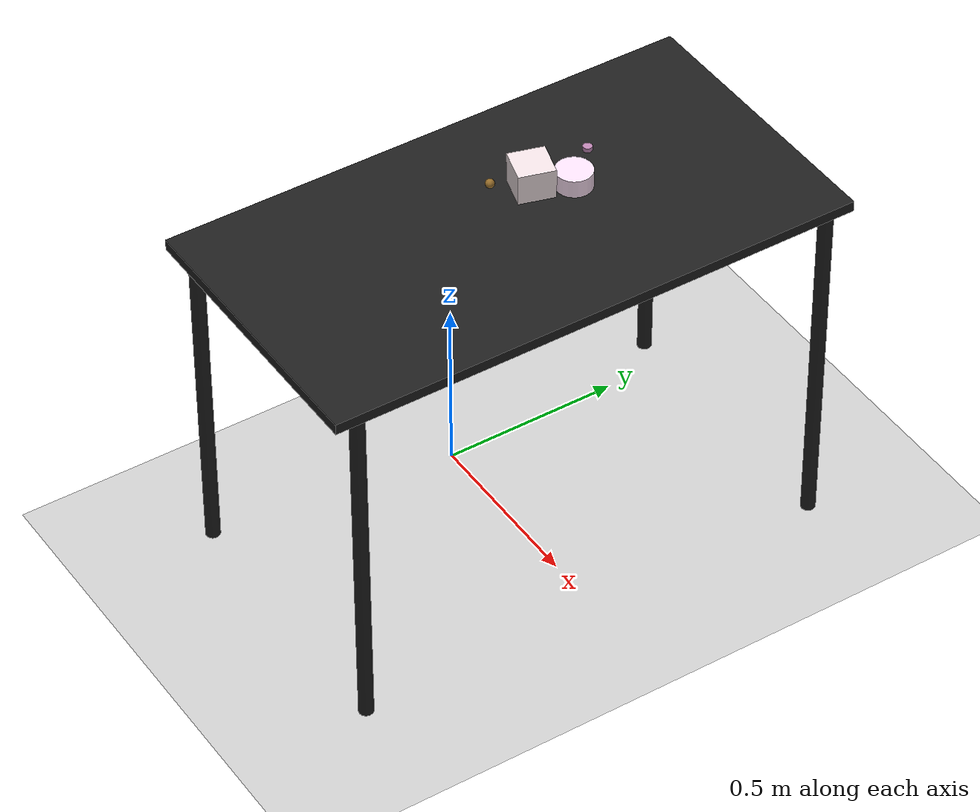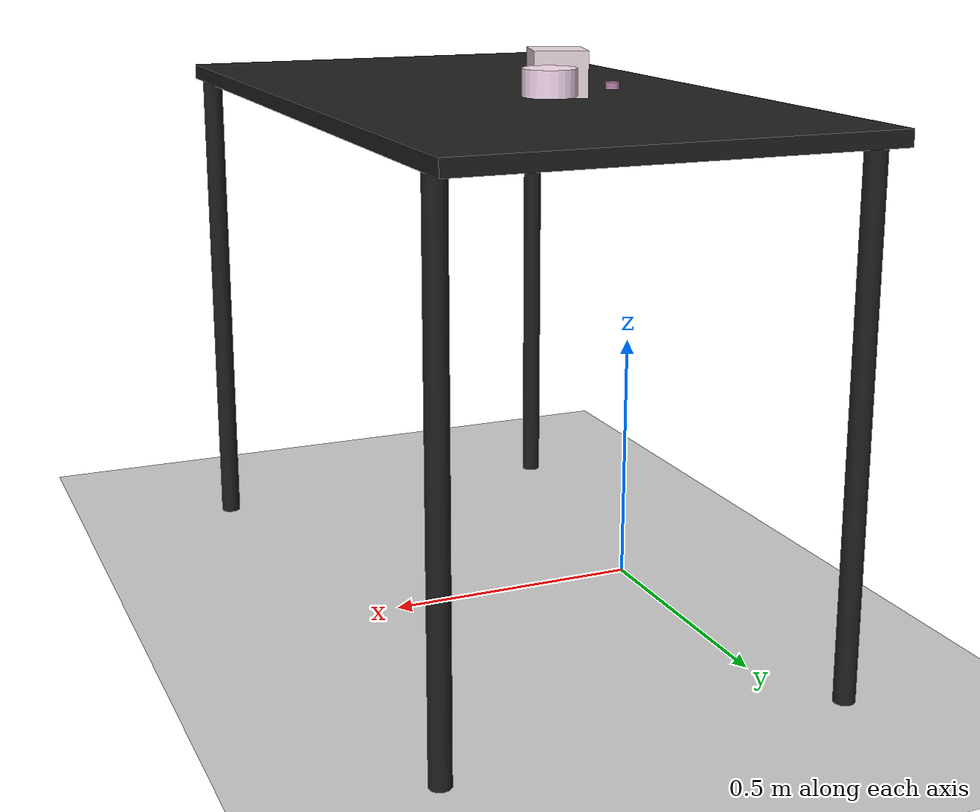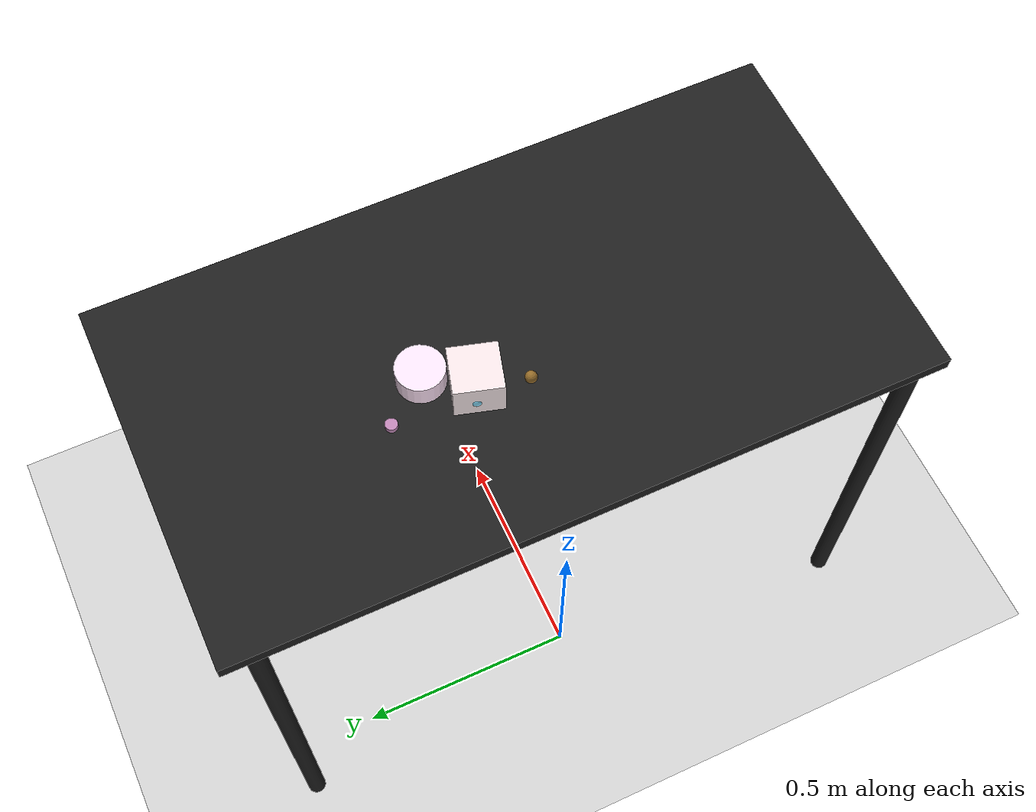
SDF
<?xml version="1.0" ?>
<sdf version="1.6">
  <world name="arm_world">
    <plugin filename="gz-sim-physics-system" name="gz::sim::systems::Physics">
      <engine>
        <filename>libgz-physics-bullet-featherstone-plugin.so</filename>
      </engine>
    </plugin>
    <plugin filename="gz-sim-user-commands-system" name="gz::sim::systems::UserCommands"/>
    <plugin filename="gz-sim-scene-broadcaster-system" name="gz::sim::systems::SceneBroadcaster"/>
    <plugin filename="gz-sim-sensors-system" name="gz::sim::systems::Sensors">
      <render_engine>ogre2</render_engine>
    </plugin>
    <gravity>0.0 0.0 -9.8</gravity>
    <scene>
      <shadows>false</shadows>
    </scene>
    <gui>
      <camera name="user_camera">
        <pose>0.75 -0.75 1.4 0 0.29 2.21</pose>
      </camera>
    </gui>
    <include>
      <uri>https://fuel.gazebosim.org/1.0/OpenRobotics/models/Sun</uri>
    </include>
    <model name="table">
      <static>true</static>
      <include>
        <uri>model://table</uri>
      </include>
      <pose>0.29 0 0 0 0 1.5708</pose>
    </model>
    <model name="ground_plane">
      <static>true</static>
      <link name="link">
        <collision name="collision">
          <geometry>
            <plane>
              <normal>0 0 1</normal>
            </plane>
          </geometry>
          <surface>
            <friction>
              <ode>
                <mu>1.0</mu>
                <mu2>1.0</mu2>
              </ode>
            </friction>
          </surface>
        </collision>
        <visual name="visual">
          <geometry>
            <plane>
              <normal>0 0 1</normal>
              <size>100 100</size>
            </plane>
          </geometry>
          <material>
            <ambient>0.8 0.8 0.8 1</ambient>
            <diffuse>0.8 0.8 0.8 1</diffuse>
            <specular>0.8 0.8 0.8 1</specular>
          </material>
        </visual>
      </link>
    </model>
    <model name="sphere_s_0">
      <pose>0.174 0.125 1.05 0 0 5.26</pose>
      <link name="sphere_s_0_link">
        <collision name="sphere_s_0_collision">
          <geometry>
            <sphere>
              <radius>0.0125</radius>
            </sphere>
          </geometry>
        </collision>
        <visual name="sphere_s_0_visual">
          <geometry>
            <sphere>
              <radius>0.0125</radius>
            </sphere>
          </geometry>
          <material>
            <ambient>0.53 0.87 0.99 1</ambient>
            <diffuse>0.53 0.87 0.99 1</diffuse>
          </material>
        </visual>
        <velocity_decay>
          <linear>1</linear>
          <angular>1</angular>
        </velocity_decay>
      </link>
    </model>
    <model name="cylinder_s_1">
      <pose>0.191 0.291 1.05 0 0 4.99</pose>
      <link name="cylinder_s_1_link">
        <collision name="cylinder_s_1_collision">
          <geometry>
            <cylinder>
              <radius>0.0125</radius>
              <length>0.0125</length>
            </cylinder>
          </geometry>
        </collision>
        <visual name="cylinder_s_1_visual">
          <geometry>
            <cylinder>
              <radius>0.0125</radius>
              <length>0.0125</length>
            </cylinder>
          </geometry>
          <material>
            <ambient>0.74 0.52 0.7 1</ambient>
            <diffuse>0.74 0.52 0.7 1</diffuse>
          </material>
        </visual>
        <velocity_decay>
          <linear>1</linear>
          <angular>1</angular>
        </velocity_decay>
      </link>
    </model>
    <model name="cylinder_l_2">
      <pose>0.269 0.199 1.05 0 0 0.41</pose>
      <link name="cylinder_l_2_link">
        <collision name="cylinder_l_2_collision">
          <geometry>
            <cylinder>
              <radius>0.05</radius>
              <length>0.05</length>
            </cylinder>
          </geometry>
        </collision>
        <visual name="cylinder_l_2_visual">
          <geometry>
            <cylinder>
              <radius>0.05</radius>
              <length>0.05</length>
            </cylinder>
          </geometry>
          <material>
            <ambient>0.99 0.88 0.96 1</ambient>
            <diffuse>0.99 0.88 0.96 1</diffuse>
          </material>
        </visual>
        <velocity_decay>
          <linear>1</linear>
          <angular>1</angular>
        </velocity_decay>
      </link>
    </model>
    <model name="sphere_s_3">
      <pose>0.176 0.011 1.05 0 0 1.36</pose>
      <link name="sphere_s_3_link">
        <collision name="sphere_s_3_collision">
          <geometry>
            <sphere>
              <radius>0.0125</radius>
            </sphere>
          </geometry>
        </collision>
        <visual name="sphere_s_3_visual">
          <geometry>
            <sphere>
              <radius>0.0125</radius>
            </sphere>
          </geometry>
          <material>
            <ambient>0.58 0.42 0.16 1</ambient>
            <diffuse>0.58 0.42 0.16 1</diffuse>
          </material>
        </visual>
        <velocity_decay>
          <linear>1</linear>
          <angular>1</angular>
        </velocity_decay>
      </link>
    </model>
    <model name="cube_l_4">
      <pose>0.213 0.109 1.05 0 0 1.29</pose>
      <link name="cube_l_4_link">
        <collision name="cube_l_4_collision">
          <geometry>
            <box>
              <size>0.1 0.1 0.1</size>
            </box>
          </geometry>
        </collision>
        <visual name="cube_l_4_visual">
          <geometry>
            <box>
              <size>0.1 0.1 0.1</size>
            </box>
          </geometry>
          <material>
            <ambient>0.94 0.88 0.89 1</ambient>
            <diffuse>0.94 0.88 0.89 1</diffuse>
          </material>
        </visual>
        <velocity_decay>
          <linear>1</linear>
          <angular>1</angular>
        </velocity_decay>
      </link>
    </model>
  </world>
</sdf>

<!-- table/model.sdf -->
<sdf version="1.5">
  <model name="table">
    <static>true</static>
    <link name="link">
      <collision name="surface">
        <pose>0 0 1.0 0 0 0</pose>
        <geometry>
          <box>
            <size>1.5 0.8 0.03</size>
          </box>
        </geometry>
        <surface>
          <friction>
            <ode>
              <mu>0.6</mu>
              <mu2>0.6</mu2>
            </ode>
          </friction>
        </surface>
      </collision>
      <visual name="surface">
        <pose>0 0 1.0 0 0 0</pose>
        <geometry>
          <box>
            <size>1.5 0.8 0.03</size>
          </box>
        </geometry>
        <material>
          <script>
            <uri>file://media/materials/scripts/gazebo.material</uri>
            <name>Gazebo/Black</name>
          </script>
        </material>
      </visual>
      <collision name="front_left_leg">
        <pose>0.68 0.38 0.5 0 0 0</pose>
        <geometry>
          <cylinder>
            <radius>0.02</radius>
            <length>1.0</length>
          </cylinder>
        </geometry>
      </collision>
      <visual name="front_left_leg">
        <pose>0.68 0.38 0.5 0 0 0</pose>
        <geometry>
          <cylinder>
            <radius>0.02</radius>
            <length>1.0</length>
          </cylinder>
        </geometry>
        <material>
          <script>
            <uri>file://media/materials/scripts/gazebo.material</uri>
            <name>Gazebo/Black</name>
          </script>
        </material>
      </visual>
      <collision name="front_right_leg">
        <pose>0.68 -0.38 0.5 0 0 0</pose>
        <geometry>
          <cylinder>
            <radius>0.02</radius>
            <length>1.0</length>
          </cylinder>
        </geometry>
      </collision>
      <visual name="front_right_leg">
        <pose>0.68 -0.38 0.5 0 0 0</pose>
        <geometry>
          <cylinder>
            <radius>0.02</radius>
            <length>1.0</length>
          </cylinder>
        </geometry>
        <material>
          <script>
            <uri>file://media/materials/scripts/gazebo.material</uri>
            <name>Gazebo/Black</name>
          </script>
        </material>
      </visual>
      <collision name="back_right_leg">
        <pose>-0.68 -0.38 0.5 0 0 0</pose>
        <geometry>
          <cylinder>
            <radius>0.02</radius>
            <length>1.0</length>
          </cylinder>
        </geometry>
      </collision>
      <visual name="back_right_leg">
        <pose>-0.68 -0.38 0.5 0 0 0</pose>
        <geometry>
          <cylinder>
            <radius>0.02</radius>
            <length>1.0</length>
          </cylinder>
        </geometry>
        <material>
          <script>
            <uri>file://media/materials/scripts/gazebo.material</uri>
            <name>Gazebo/Black</name>
          </script>
        </material>
      </visual>
      <collision name="back_left_leg">
        <pose>-0.68 0.38 0.5 0 0 0</pose>
        <geometry>
          <cylinder>
            <radius>0.02</radius>
            <length>1.0</length>
          </cylinder>
        </geometry>
      </collision>
      <visual name="back_left_leg">
        <pose>-0.68 0.38 0.5 0 0 0</pose>
        <geometry>
          <cylinder>
            <radius>0.02</radius>
            <length>1.0</length>
          </cylinder>
        </geometry>
        <material>
          <script>
            <uri>file://media/materials/scripts/gazebo.material</uri>
            <name>Gazebo/Black</name>
          </script>
        </material>
      </visual>
    </link>
  </model>
</sdf>
